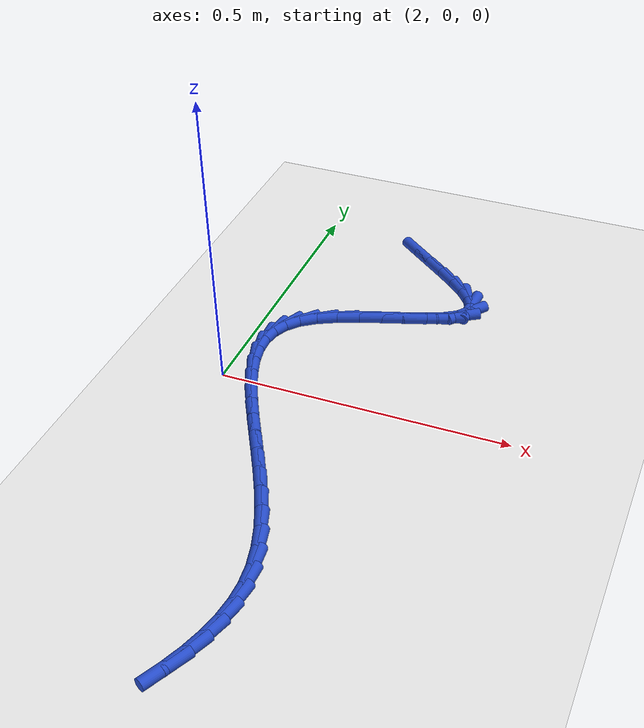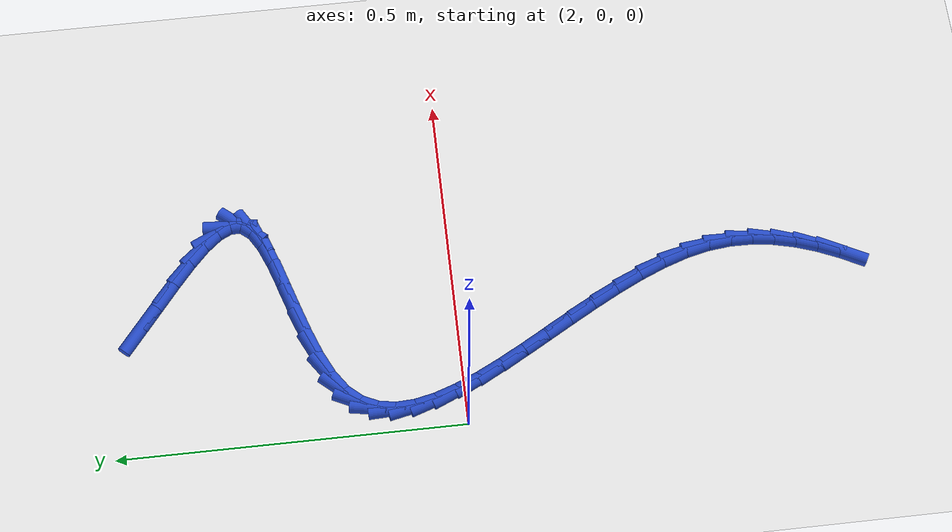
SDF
<sdf version="1.6">
 <world name="default">
  <model name="ground_plane">
   <static>1</static>
   <link name="link">
    <collision name="collision">
     <geometry><plane><normal>0 0 1</normal><size>100 100</size></plane></geometry>
     <surface><friction><ode><mu>100</mu><mu2>50</mu2></ode></friction></surface>
    </collision>
    <visual name="visual">
     <cast_shadows>0</cast_shadows>
     <geometry><plane><normal>0 0 1</normal><size>100 100</size></plane></geometry>
     <material>
      <script><uri>file://media/materials/scripts/gazebo.material</uri><name>Gazebo/WhiteGlow</name></script>
     </material>
    </visual>
   </link>
  </model>
  <model name="line">
   <link name="link_101">
    <pose>2.1885108178035635 0.45531412249237424 0.01 0 1.57 -0.6689522603400722</pose>
    <collision name="collision">
     <geometry><cylinder><radius>0.01</radius><length>0.08</length></cylinder></geometry>
    </collision>
    <visual name="visual">
     <material>
      <script><name>Gazebo/Blue</name><uri>file://media/materials/scripts/gazebo.material</uri></script>
     </material>
     <geometry><cylinder><radius>0.01</radius><length>0.08</length></cylinder></geometry>
    </visual>
   </link>
   <link name="link_102">
    <pose>2.222204133404023 0.4286778645131749 0.01 0 1.57 -0.6674163155509121</pose>
    <collision name="collision">
     <geometry><cylinder><radius>0.01</radius><length>0.08</length></cylinder></geometry>
    </collision>
    <visual name="visual">
     <material>
      <script><name>Gazebo/Blue</name><uri>file://media/materials/scripts/gazebo.material</uri></script>
     </material>
     <geometry><cylinder><radius>0.01</radius><length>0.08</length></cylinder></geometry>
    </visual>
   </link>
   <link name="link_103">
    <pose>2.254553002592351 0.403185099451064 0.01 0 1.57 -0.6911873114978968</pose>
    <collision name="collision">
     <geometry><cylinder><radius>0.01</radius><length>0.08</length></cylinder></geometry>
    </collision>
    <visual name="visual">
     <material>
      <script><name>Gazebo/Blue</name><uri>file://media/materials/scripts/gazebo.material</uri></script>
     </material>
     <geometry><cylinder><radius>0.01</radius><length>0.08</length></cylinder></geometry>
    </visual>
   </link>
   <link name="link_104">
    <pose>2.2837871708081074 0.37899867379416313 0.01 0 1.57 -0.7507382457638151</pose>
    <collision name="collision">
     <geometry><cylinder><radius>0.01</radius><length>0.08</length></cylinder></geometry>
    </collision>
    <visual name="visual">
     <material>
      <script><name>Gazebo/Blue</name><uri>file://media/materials/scripts/gazebo.material</uri></script>
     </material>
     <geometry><cylinder><radius>0.01</radius><length>0.08</length></cylinder></geometry>
    </visual>
   </link>
   <link name="link_105">
    <pose>2.3081363834908513 0.3562814340305952 0.01 0 1.57 -0.8726253061070967</pose>
    <collision name="collision">
     <geometry><cylinder><radius>0.01</radius><length>0.08</length></cylinder></geometry>
    </collision>
    <visual name="visual">
     <material>
      <script><name>Gazebo/Blue</name><uri>file://media/materials/scripts/gazebo.material</uri></script>
     </material>
     <geometry><cylinder><radius>0.01</radius><length>0.08</length></cylinder></geometry>
    </visual>
   </link>
   <link name="link_106">
    <pose>2.3258303860801446 0.335196226648482 0.01 0 1.57 -1.1228896394236467</pose>
    <collision name="collision">
     <geometry><cylinder><radius>0.01</radius><length>0.08</length></cylinder></geometry>
    </collision>
    <visual name="visual">
     <material>
      <script><name>Gazebo/Blue</name><uri>file://media/materials/scripts/gazebo.material</uri></script>
     </material>
     <geometry><cylinder><radius>0.01</radius><length>0.08</length></cylinder></geometry>
    </visual>
   </link>
   <link name="link_107">
    <pose>2.3350989240155458 0.3159058981359455 0.01 0 1.57 1.5173537830893027</pose>
    <collision name="collision">
     <geometry><cylinder><radius>0.01</radius><length>0.08</length></cylinder></geometry>
    </collision>
    <visual name="visual">
     <material>
      <script><name>Gazebo/Blue</name><uri>file://media/materials/scripts/gazebo.material</uri></script>
     </material>
     <geometry><cylinder><radius>0.01</radius><length>0.08</length></cylinder></geometry>
    </visual>
   </link>
   <link name="link_108">
    <pose>2.3341717427366153 0.29857329498110763 0.01 0 1.57 0.8939713155879414</pose>
    <collision name="collision">
     <geometry><cylinder><radius>0.01</radius><length>0.08</length></cylinder></geometry>
    </collision>
    <visual name="visual">
     <material>
      <script><name>Gazebo/Blue</name><uri>file://media/materials/scripts/gazebo.material</uri></script>
     </material>
     <geometry><cylinder><radius>0.01</radius><length>0.08</length></cylinder></geometry>
    </visual>
   </link>
   <link name="link_109">
    <pose>2.321866211040521 0.28325692649344775 0.01 0 1.57 0.554798634660076</pose>
    <collision name="collision">
     <geometry><cylinder><radius>0.01</radius><length>0.08</length></cylinder></geometry>
    </collision>
    <visual name="visual">
     <material>
      <script><name>Gazebo/Blue</name><uri>file://media/materials/scripts/gazebo.material</uri></script>
     </material>
     <geometry><cylinder><radius>0.01</radius><length>0.08</length></cylinder></geometry>
    </visual>
   </link>
   <link name="link_110">
    <pose>2.299719966339873 0.2695322967567138 0.01 0 1.57 0.4044492142378339</pose>
    <collision name="collision">
     <geometry><cylinder><radius>0.01</radius><length>0.08</length></cylinder></geometry>
    </collision>
    <visual name="visual">
     <material>
      <script><name>Gazebo/Blue</name><uri>file://media/materials/scripts/gazebo.material</uri></script>
     </material>
     <geometry><cylinder><radius>0.01</radius><length>0.08</length></cylinder></geometry>
    </visual>
   </link>
   <link name="link_111">
    <pose>2.270057253085167 0.2568352415484652 0.01 0 1.57 0.33755527911948796</pose>
    <collision name="collision">
     <geometry><cylinder><radius>0.01</radius><length>0.08</length></cylinder></geometry>
    </collision>
    <visual name="visual">
     <material>
      <script><name>Gazebo/Blue</name><uri>file://media/materials/scripts/gazebo.material</uri></script>
     </material>
     <geometry><cylinder><radius>0.01</radius><length>0.08</length></cylinder></geometry>
    </visual>
   </link>
   <link name="link_112">
    <pose>2.2352023942343004 0.24460158270665044 0.01 0 1.57 0.3160187818468324</pose>
    <collision name="collision">
     <geometry><cylinder><radius>0.01</radius><length>0.08</length></cylinder></geometry>
    </collision>
    <visual name="visual">
     <material>
      <script><name>Gazebo/Blue</name><uri>file://media/materials/scripts/gazebo.material</uri></script>
     </material>
     <geometry><cylinder><radius>0.01</radius><length>0.08</length></cylinder></geometry>
    </visual>
   </link>
   <link name="link_113">
    <pose>2.197479712745172 0.23226714206921856 0.01 0 1.57 0.32747844474239907</pose>
    <collision name="collision">
     <geometry><cylinder><radius>0.01</radius><length>0.08</length></cylinder></geometry>
    </collision>
    <visual name="visual">
     <material>
      <script><name>Gazebo/Blue</name><uri>file://media/materials/scripts/gazebo.material</uri></script>
     </material>
     <geometry><cylinder><radius>0.01</radius><length>0.08</length></cylinder></geometry>
    </visual>
   </link>
   <link name="link_114">
    <pose>2.1592135315756815 0.219267741474118 0.01 0 1.57 0.3718382108251959</pose>
    <collision name="collision">
     <geometry><cylinder><radius>0.01</radius><length>0.08</length></cylinder></geometry>
    </collision>
    <visual name="visual">
     <material>
      <script><name>Gazebo/Blue</name><uri>file://media/materials/scripts/gazebo.material</uri></script>
     </material>
     <geometry><cylinder><radius>0.01</radius><length>0.08</length></cylinder></geometry>
    </visual>
   </link>
   <link name="link_115">
    <pose>2.1227281736837256 0.20503920275929724 0.01 0 1.57 0.459482094928834</pose>
    <collision name="collision">
     <geometry><cylinder><radius>0.01</radius><length>0.08</length></cylinder></geometry>
    </collision>
    <visual name="visual">
     <material>
      <script><name>Gazebo/Blue</name><uri>file://media/materials/scripts/gazebo.material</uri></script>
     </material>
     <geometry><cylinder><radius>0.01</radius><length>0.08</length></cylinder></geometry>
    </visual>
   </link>
   <link name="link_116">
    <pose>2.0903479620272045 0.1890173477627054 0.01 0 1.57 0.6160314248599686</pose>
    <collision name="collision">
     <geometry><cylinder><radius>0.01</radius><length>0.08</length></cylinder></geometry>
    </collision>
    <visual name="visual">
     <material>
      <script><name>Gazebo/Blue</name><uri>file://media/materials/scripts/gazebo.material</uri></script>
     </material>
     <geometry><cylinder><radius>0.01</radius><length>0.08</length></cylinder></geometry>
    </visual>
   </link>
   <link name="link_117">
    <pose>2.064389000671052 0.17064009879990633 0.01 0 1.57 0.857971501784836</pose>
    <collision name="collision">
     <geometry><cylinder><radius>0.01</radius><length>0.08</length></cylinder></geometry>
    </collision>
    <visual name="visual">
     <material>
      <script><name>Gazebo/Blue</name><uri>file://media/materials/scripts/gazebo.material</uri></script>
     </material>
     <geometry><cylinder><radius>0.01</radius><length>0.08</length></cylinder></geometry>
    </visual>
   </link>
   <link name="link_118">
    <pose>2.046195454308855 0.1495937737917554 0.01 0 1.57 1.135224962578003</pose>
    <collision name="collision">
     <geometry><cylinder><radius>0.01</radius><length>0.08</length></cylinder></geometry>
    </collision>
    <visual name="visual">
     <material>
      <script><name>Gazebo/Blue</name><uri>file://media/materials/scripts/gazebo.material</uri></script>
     </material>
     <geometry><cylinder><radius>0.01</radius><length>0.08</length></cylinder></geometry>
    </visual>
   </link>
   <link name="link_119">
    <pose>2.035235843651665 0.1260440433184308 0.01 0 1.57 1.3994200930077725</pose>
    <collision name="collision">
     <geometry><cylinder><radius>0.01</radius><length>0.08</length></cylinder></geometry>
    </collision>
    <visual name="visual">
     <material>
      <script><name>Gazebo/Blue</name><uri>file://media/materials/scripts/gazebo.material</uri></script>
     </material>
     <geometry><cylinder><radius>0.01</radius><length>0.08</length></cylinder></geometry>
    </visual>
   </link>
   <link name="link_120">
    <pose>2.0307648561939184 0.10021122666849616 0.01 0 1.57 -1.5252177115773455</pose>
    <collision name="collision">
     <geometry><cylinder><radius>0.01</radius><length>0.08</length></cylinder></geometry>
    </collision>
    <visual name="visual">
     <material>
      <script><name>Gazebo/Blue</name><uri>file://media/materials/scripts/gazebo.material</uri></script>
     </material>
     <geometry><cylinder><radius>0.01</radius><length>0.08</length></cylinder></geometry>
    </visual>
   </link>
   <link name="link_121">
    <pose>2.0320371794300502 0.07231564313051428 0.01 0 1.57 -1.3629883204921616</pose>
    <collision name="collision">
     <geometry><cylinder><radius>0.01</radius><length>0.08</length></cylinder></geometry>
    </collision>
    <visual name="visual">
     <material>
      <script><name>Gazebo/Blue</name><uri>file://media/materials/scripts/gazebo.material</uri></script>
     </material>
     <geometry><cylinder><radius>0.01</radius><length>0.08</length></cylinder></geometry>
    </visual>
   </link>
   <link name="link_122">
    <pose>2.038307500854499 0.04257761199304823 0.01 0 1.57 -1.2470490741549174</pose>
    <collision name="collision">
     <geometry><cylinder><radius>0.01</radius><length>0.08</length></cylinder></geometry>
    </collision>
    <visual name="visual">
     <material>
      <script><name>Gazebo/Blue</name><uri>file://media/materials/scripts/gazebo.material</uri></script>
     </material>
     <geometry><cylinder><radius>0.01</radius><length>0.08</length></cylinder></geometry>
    </visual>
   </link>
   <link name="link_123">
    <pose>2.048830507961699 0.011217452544661069 0.01 0 1.57 -1.1661743883178368</pose>
    <collision name="collision">
     <geometry><cylinder><radius>0.01</radius><length>0.08</length></cylinder></geometry>
    </collision>
    <visual name="visual">
     <material>
      <script><name>Gazebo/Blue</name><uri>file://media/materials/scripts/gazebo.material</uri></script>
     </material>
     <geometry><cylinder><radius>0.01</radius><length>0.08</length></cylinder></geometry>
    </visual>
   </link>
   <link name="link_124">
    <pose>2.0628608882460866 -0.021544515926084102 0.01 0 1.57 -1.1113832108331048</pose>
    <collision name="collision">
     <geometry><cylinder><radius>0.01</radius><length>0.08</length></cylinder></geometry>
    </collision>
    <visual name="visual">
     <material>
      <script><name>Gazebo/Blue</name><uri>file://media/materials/scripts/gazebo.material</uri></script>
     </material>
     <geometry><cylinder><radius>0.01</radius><length>0.08</length></cylinder></geometry>
    </visual>
   </link>
   <link name="link_125">
    <pose>2.0796533292020993 -0.055487974130625124 0.01 0 1.57 -1.0765354324141398</pose>
    <collision name="collision">
     <geometry><cylinder><radius>0.01</radius><length>0.08</length></cylinder></geometry>
    </collision>
    <visual name="visual">
     <material>
      <script><name>Gazebo/Blue</name><uri>file://media/materials/scripts/gazebo.material</uri></script>
     </material>
     <geometry><cylinder><radius>0.01</radius><length>0.08</length></cylinder></geometry>
    </visual>
   </link>
   <link name="link_126">
    <pose>2.098462518324171 -0.09039260278039712 0.01 0 1.57 -1.0577668610443842</pose>
    <collision name="collision">
     <geometry><cylinder><radius>0.01</radius><length>0.08</length></cylinder></geometry>
    </collision>
    <visual name="visual">
     <material>
      <script><name>Gazebo/Blue</name><uri>file://media/materials/scripts/gazebo.material</uri></script>
     </material>
     <geometry><cylinder><radius>0.01</radius><length>0.08</length></cylinder></geometry>
    </visual>
   </link>
   <link name="link_127">
    <pose>2.1185431431067414 -0.12603808258683796 0.01 0 1.57 -1.0528922402372687</pose>
    <collision name="collision">
     <geometry><cylinder><radius>0.01</radius><length>0.08</length></cylinder></geometry>
    </collision>
    <visual name="visual">
     <material>
      <script><name>Gazebo/Blue</name><uri>file://media/materials/scripts/gazebo.material</uri></script>
     </material>
     <geometry><cylinder><radius>0.01</radius><length>0.08</length></cylinder></geometry>
    </visual>
   </link>
   <link name="link_128">
    <pose>2.1391498910442435 -0.16220409426138443 0.01 0 1.57 -1.061008186778774</pose>
    <collision name="collision">
     <geometry><cylinder><radius>0.01</radius><length>0.08</length></cylinder></geometry>
    </collision>
    <visual name="visual">
     <material>
      <script><name>Gazebo/Blue</name><uri>file://media/materials/scripts/gazebo.material</uri></script>
     </material>
     <geometry><cylinder><radius>0.01</radius><length>0.08</length></cylinder></geometry>
    </visual>
   </link>
   <link name="link_129">
    <pose>2.159537449631115 -0.1986703185154736 0.01 0 1.57 -1.0822931268384157</pose>
    <collision name="collision">
     <geometry><cylinder><radius>0.01</radius><length>0.08</length></cylinder></geometry>
    </collision>
    <visual name="visual">
     <material>
      <script><name>Gazebo/Blue</name><uri>file://media/materials/scripts/gazebo.material</uri></script>
     </material>
     <geometry><cylinder><radius>0.01</radius><length>0.08</length></cylinder></geometry>
    </visual>
   </link>
   <link name="link_130">
    <pose>2.178960506361792 -0.23521643606054224 0.01 0 1.57 -1.1179653173176904</pose>
    <collision name="collision">
     <geometry><cylinder><radius>0.01</radius><length>0.08</length></cylinder></geometry>
    </collision>
    <visual name="visual">
     <material>
      <script><name>Gazebo/Blue</name><uri>file://media/materials/scripts/gazebo.material</uri></script>
     </material>
     <geometry><cylinder><radius>0.01</radius><length>0.08</length></cylinder></geometry>
    </visual>
   </link>
   <link name="link_131">
    <pose>2.1966737487307113 -0.2716221276080275 0.01 0 1.57 -1.170359658339436</pose>
    <collision name="collision">
     <geometry><cylinder><radius>0.01</radius><length>0.08</length></cylinder></geometry>
    </collision>
    <visual name="visual">
     <material>
      <script><name>Gazebo/Blue</name><uri>file://media/materials/scripts/gazebo.material</uri></script>
     </material>
     <geometry><cylinder><radius>0.01</radius><length>0.08</length></cylinder></geometry>
    </visual>
   </link>
   <link name="link_132">
    <pose>2.211931864232308 -0.3076670738693669 0.01 0 1.57 -1.2430589231713287</pose>
    <collision name="collision">
     <geometry><cylinder><radius>0.01</radius><length>0.08</length></cylinder></geometry>
    </collision>
    <visual name="visual">
     <material>
      <script><name>Gazebo/Blue</name><uri>file://media/materials/scripts/gazebo.material</uri></script>
     </material>
     <geometry><cylinder><radius>0.01</radius><length>0.08</length></cylinder></geometry>
    </visual>
   </link>
   <link name="link_133">
    <pose>2.2239895403610195 -0.3431309555559959 0.01 0 1.57 -1.3408871451333368</pose>
    <collision name="collision">
     <geometry><cylinder><radius>0.01</radius><length>0.08</length></cylinder></geometry>
    </collision>
    <visual name="visual">
     <material>
      <script><name>Gazebo/Blue</name><uri>file://media/materials/scripts/gazebo.material</uri></script>
     </material>
     <geometry><cylinder><radius>0.01</radius><length>0.08</length></cylinder></geometry>
    </visual>
   </link>
   <link name="link_134">
    <pose>2.2321022702718705 -0.3777936953194401 0.01 0 1.57 -1.4611300064360286</pose>
    <collision name="collision">
     <geometry><cylinder><radius>0.01</radius><length>0.08</length></cylinder></geometry>
    </collision>
    <visual name="visual">
     <material>
      <script><name>Gazebo/Blue</name><uri>file://media/materials/scripts/gazebo.material</uri></script>
     </material>
     <geometry><cylinder><radius>0.01</radius><length>0.08</length></cylinder></geometry>
    </visual>
   </link>
   <link name="link_135">
    <pose>2.235816080362262 -0.4115224630207085 0.01 0 1.57 1.558055317572122</pose>
    <collision name="collision">
     <geometry><cylinder><radius>0.01</radius><length>0.08</length></cylinder></geometry>
    </collision>
    <visual name="visual">
     <material>
      <script><name>Gazebo/Blue</name><uri>file://media/materials/scripts/gazebo.material</uri></script>
     </material>
     <geometry><cylinder><radius>0.01</radius><length>0.08</length></cylinder></geometry>
    </visual>
   </link>
   <link name="link_136">
    <pose>2.235397155869661 -0.44440069241084834 0.01 0 1.57 1.441610620568534</pose>
    <collision name="collision">
     <geometry><cylinder><radius>0.01</radius><length>0.08</length></cylinder></geometry>
    </collision>
    <visual name="visual">
     <material>
      <script><name>Gazebo/Blue</name><uri>file://media/materials/scripts/gazebo.material</uri></script>
     </material>
     <geometry><cylinder><radius>0.01</radius><length>0.08</length></cylinder></geometry>
    </visual>
   </link>
   <link name="link_137">
    <pose>2.2312213472861986 -0.47654474974586986 0.01 0 1.57 1.335535035826194</pose>
    <collision name="collision">
     <geometry><cylinder><radius>0.01</radius><length>0.08</length></cylinder></geometry>
    </collision>
    <visual name="visual">
     <material>
      <script><name>Gazebo/Blue</name><uri>file://media/materials/scripts/gazebo.material</uri></script>
     </material>
     <geometry><cylinder><radius>0.01</radius><length>0.08</length></cylinder></geometry>
    </visual>
   </link>
   <link name="link_138">
    <pose>2.2236645051040025 -0.5080710012817832 0.01 0 1.57 1.2426652486723884</pose>
    <collision name="collision">
     <geometry><cylinder><radius>0.01</radius><length>0.08</length></cylinder></geometry>
    </collision>
    <visual name="visual">
     <material>
      <script><name>Gazebo/Blue</name><uri>file://media/materials/scripts/gazebo.material</uri></script>
     </material>
     <geometry><cylinder><radius>0.01</radius><length>0.08</length></cylinder></geometry>
    </visual>
   </link>
   <link name="link_139">
    <pose>2.2131024798151993 -0.5390958132745985 0.01 0 1.57 1.164250200384047</pose>
    <collision name="collision">
     <geometry><cylinder><radius>0.01</radius><length>0.08</length></cylinder></geometry>
    </collision>
    <visual name="visual">
     <material>
      <script><name>Gazebo/Blue</name><uri>file://media/materials/scripts/gazebo.material</uri></script>
     </material>
     <geometry><cylinder><radius>0.01</radius><length>0.08</length></cylinder></geometry>
    </visual>
   </link>
   <link name="link_140">
    <pose>2.1999111219119176 -0.5697355519803267 0.01 0 1.57 1.1003412437804652</pose>
    <collision name="collision">
     <geometry><cylinder><radius>0.01</radius><length>0.08</length></cylinder></geometry>
    </collision>
    <visual name="visual">
     <material>
      <script><name>Gazebo/Blue</name><uri>file://media/materials/scripts/gazebo.material</uri></script>
     </material>
     <geometry><cylinder><radius>0.01</radius><length>0.08</length></cylinder></geometry>
    </visual>
   </link>
  </model>
 </world>
</sdf>
